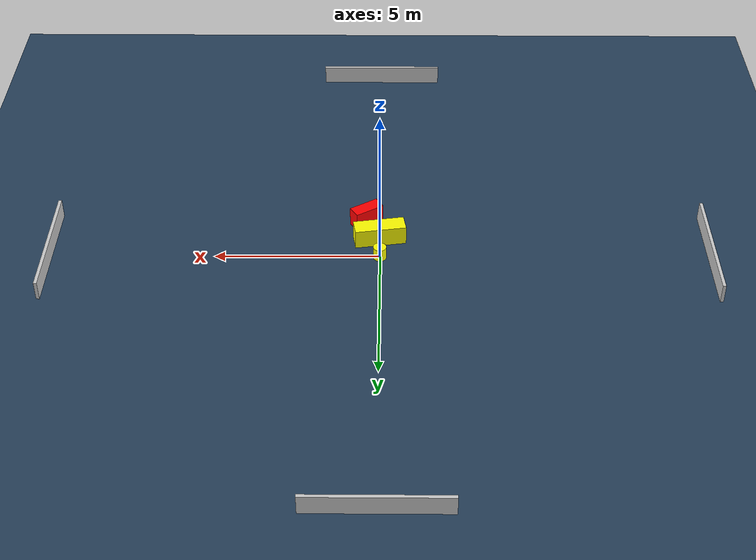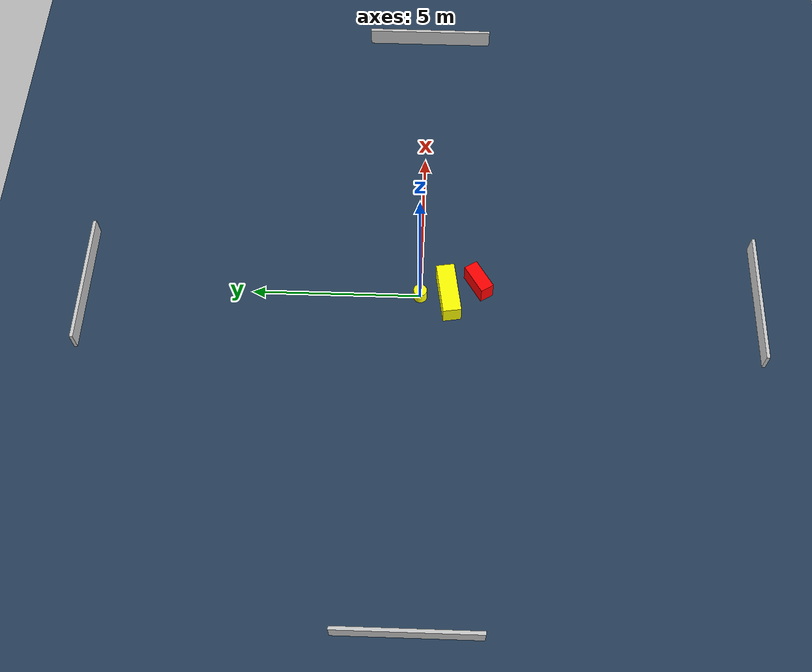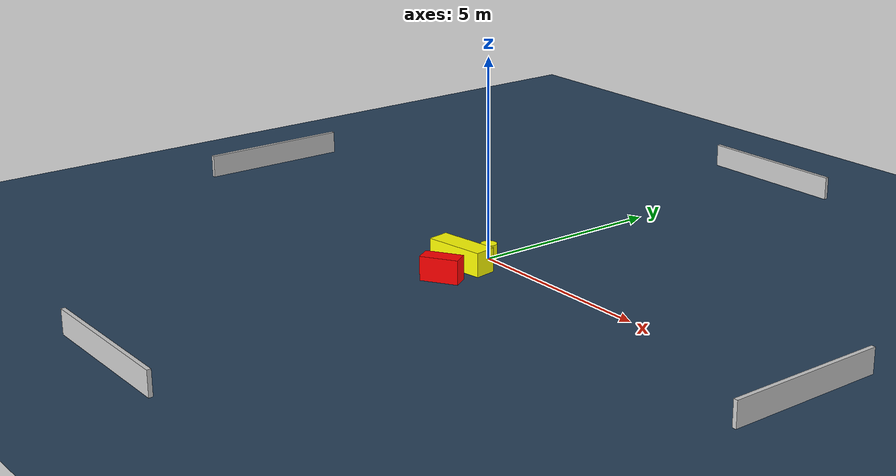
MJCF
<?xml version="1.0" ?>
<mujoco model="generated_environment">
  <option timestep="0.01" integrator="RK4" cone="elliptic"/>
  <default>
    <geom density="1"/>
  </default>
  <asset>
    <texture builtin="gradient" height="3072" name="skybox" rgb1="0.3 0.5 0.7" rgb2="0 0 0" type="skybox" width="512"/>
    <texture builtin="checker" height="300" name="groundplane" rgb1="0.2 0.3 0.4" rgb2="0.1 0.2 0.3" type="2d" width="300"/>
    <material name="groundplane" reflectance="0.2" texrepeat="5 5" texture="groundplane"/>
  </asset>
  <worldbody>
    <light dir="0 0 -1" directional="true" pos="0 0 1.5"/>
    <geom condim="3" friction="0.5 0.005 0.001" material="groundplane" name="floor" pos="0 0 0" size="0 0 0.05" type="plane"/>
    <body name="walls">
      <geom name="wall_1" condim="4" pos="-10.0 0.0 0.3" rgba="0.800000011920929 0.800000011920929 0.800000011920929 1.0" size="0.05 2.0 0.3" type="box"/>
      <geom name="wall_2" condim="4" pos="10.0 0.0 0.3" rgba="0.800000011920929 0.800000011920929 0.800000011920929 1.0" size="0.05 2.0 0.3" type="box"/>
      <geom name="wall_3" condim="4" pos="0.0 -10.0 0.3" rgba="0.800000011920929 0.800000011920929 0.800000011920929 1.0" size="2.0 0.05 0.3" type="box"/>
      <geom name="wall_4" condim="4" pos="0.0 10.0 0.3" rgba="0.800000011920929 0.800000011920929 0.800000011920929 1.0" size="2.0 0.05 0.3" type="box"/>
    </body>
    <body name="robot">
      <joint name="joint_x" type="slide" pos="0 0 0" axis="1 0 0"/>
      <joint name="joint_y" type="slide" pos="0 0 0" axis="0 1 0"/>
      <geom name="robot" type="cylinder" pos="0.0 0.0 0.2" size="0.2 0.2 0.0" mass="5.0" friction="1.0 0.005 0.0001" condim="4" rgba="1.0 1.0 0.0 1.0"/>
    </body>
    <body name="obstacle_1_movable">
      <geom name="obstacle_1_movable" condim="4" pos="0.012434821701971533 -0.83768983673472 0.3" euler="0 0 279.0316487252816" friction="0.0 0.005 0.001" rgba="1.0 1.0 0.0 1.0" size="0.27097037804247615 0.7818067409633735 0.3" type="box" mass="0.1"/>
      <joint type="free"/>
    </body>
    <body name="obstacle_2_static">
      <geom name="obstacle_2_static" condim="4" pos="0.42021446169257515 -1.7285919504580116 0.3" euler="0 0 122.21433704917693" friction="0.0 0.005 0.001" rgba="1.0 0.0 0.0 1.0" size="0.20820646504956566 0.47498548473867996 0.3" type="box"/>
    </body>
  </worldbody>
  <actuator>
    <motor name="actuator_x" joint="joint_x" gear="1" ctrlrange="-1 1"/>
    <motor name="actuator_y" joint="joint_y" gear="1" ctrlrange="-1 1"/>
  </actuator>
</mujoco>
